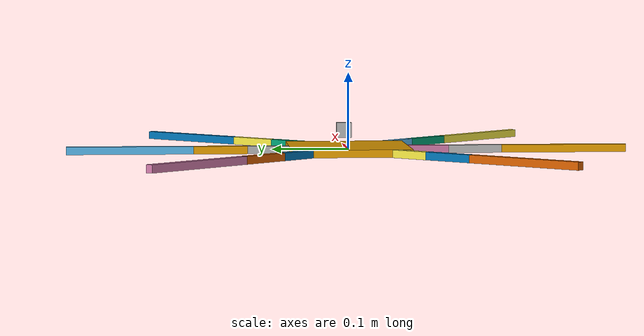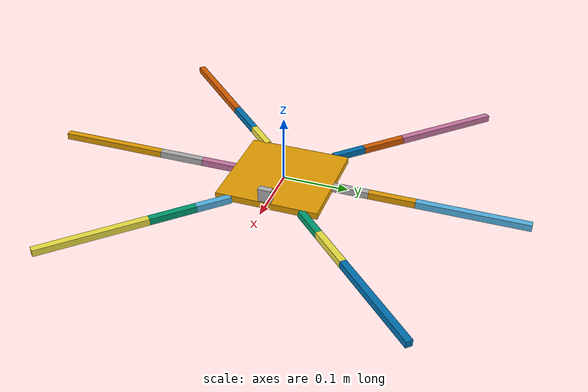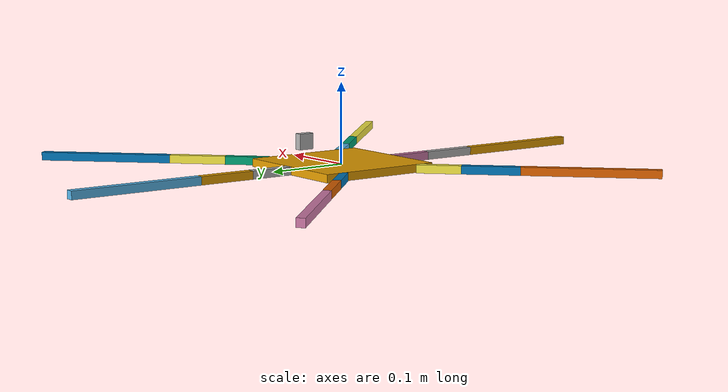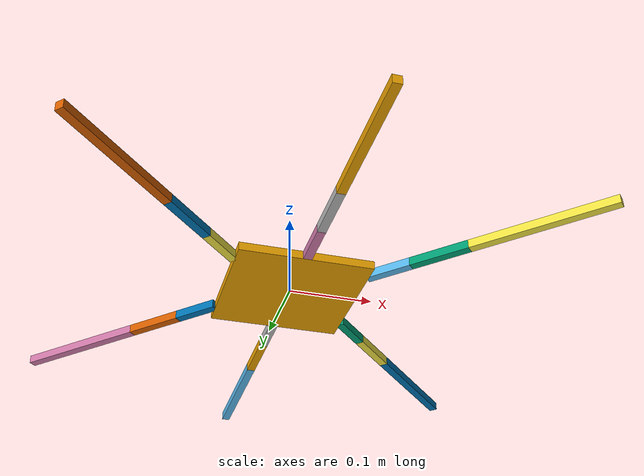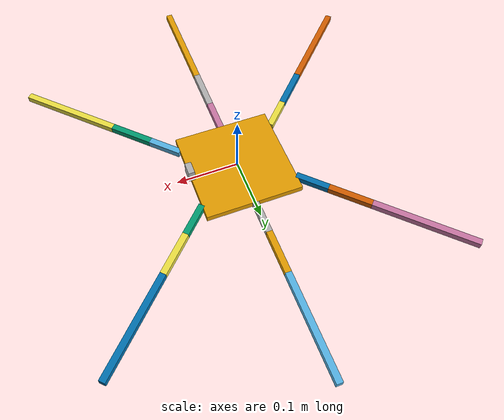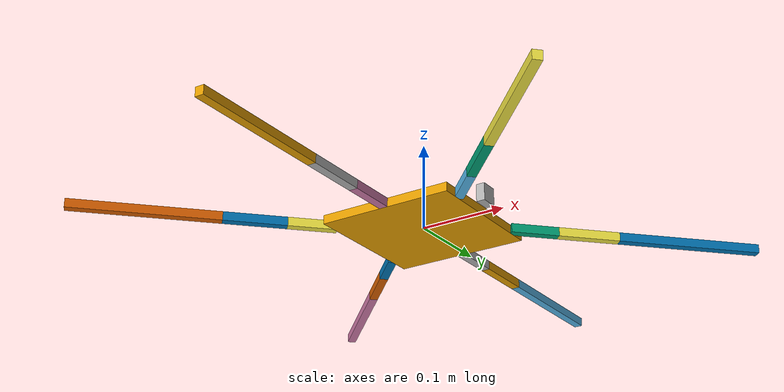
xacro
<?xml version="1.0"?>
<robot name="ant" xmlns:xacro="http://ros.org/wiki/xacro">
<xacro:property name="width" value="0.01" />
<xacro:macro name="line" params="length " >
    <visual>
            <geometry>
                <box size="${width} ${length} ${width}" />
            </geometry>
            <origin xyz="0 ${length/2} 0" rpy="0 0 0" />
        </visual>
</xacro:macro>

<!-- leg definition macro -->
<xacro:macro name="leg" params="name *origin">
    <joint name="base_to_${name}_L0" type="fixed">
        <parent link="base_link"/>
        <child link="${name}_L0"/>
        <xacro:insert_block name="origin"/>
    </joint>
    <link name="${name}_L0"/>
    <joint name="${name}_J01" type="revolute">
        <parent link="${name}_L0"/>
        <child link="${name}_L1"/>
        <axis xyz="0 0 1"/>
        <origin xyz="0 0 0" rpy="0 0 0"/>
        <limit lower="${-pi}" upper="${pi}" effort="1000.0" velocity="0.5"/>
    </joint>
    <link name="${name}_L1">
        <xacro:line length="0.054"/>
    </link>

    <joint name="${name}_J12" type="revolute">
        <parent link="${name}_L1"/>
        <child link="${name}_L2"/>
        <origin xyz="0 0.054 0" rpy="0 0 0"/>
        <axis xyz="1 0 0"/>
        <limit lower="${-pi}" upper="${pi}" effort="1000.0" velocity="0.5"/>
    </joint>
    <link name="${name}_L2">
        <xacro:line length="0.07"/>
    </link>

    <joint name="${name}_J23" type="revolute">
        <parent link="${name}_L2"/>
        <child link="${name}_L3"/>
        <origin xyz="0 0.07 0" rpy="0 0 0"/>
        <axis xyz="1 0 0"/>
        <limit lower="${-pi}" upper="${pi}" effort="1000.0" velocity="0.5"/>
    </joint>
    <link name="${name}_L3">
        <xacro:line length="0.165" />
    </link>
    <joint name="${name}_J34" type="fixed">
        <parent link="${name}_L3"/>
        <child link="${name}_L4"/>
        <origin xyz="0 0.165 0" rpy="0 0 0"/>
    </joint>
    <link name="${name}_L4"/>
</xacro:macro>

<!-- This link controls the pose of the body(offset and rotation) relative to base_center -->
<link name="base_link">
    <visual>
        <geometry>
            <box size="0.156 0.156 ${width}"/>
        </geometry>
    </visual>
</link>
<!-- define 6 legs -->
<xacro:leg name="leftFrontLeg">
    <origin xyz="0.078 0.054 0" rpy="0 0 ${-pi/4}" />
</xacro:leg>

<xacro:leg name="leftMiddleLeg">
    <origin xyz="0 0.078 0" rpy="0 0 0" />
</xacro:leg>

<xacro:leg name="leftRareLeg">
    <origin xyz="-0.078 0.054 0" rpy="0 0 ${pi/4}" />
</xacro:leg>

<xacro:leg name="rightFrontLeg">
    <origin xyz="0.078 -0.054 0" rpy="0 0 ${pi+pi/4}" />
</xacro:leg>

<xacro:leg name="rightMiddleLeg">
    <origin xyz="0 -0.078 0" rpy="0 0 ${pi}" />
</xacro:leg>

<xacro:leg name="rightRareLeg">
    <origin xyz="-0.078 -0.054 0" rpy="0 0 ${pi-pi/4}" />
</xacro:leg>

<!-- camera on head -->
<joint name="base_to_cam" type="fixed">
    <parent link="base_link"/>
    <child link="cam_link"/>
    <origin xyz="0.078 0 0" rpy="0 0 0"/>
</joint>
<link name="cam_link">
    <visual>
            <geometry>
                <box size="${width} 0.02 0.02" />
            </geometry>
            <origin xyz="0 0 0.02" rpy="0 0 0" />
        </visual>
</link>
</robot>
